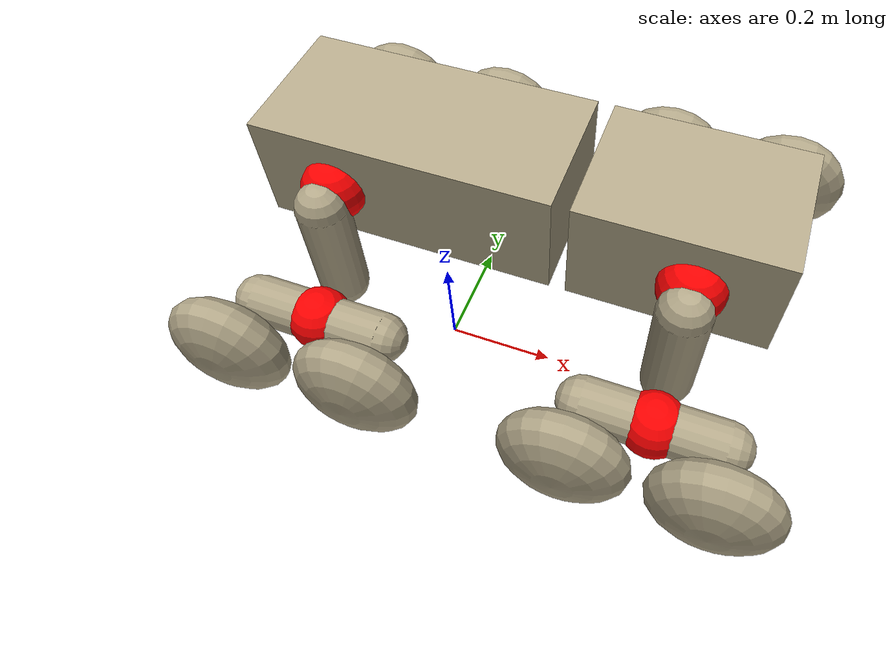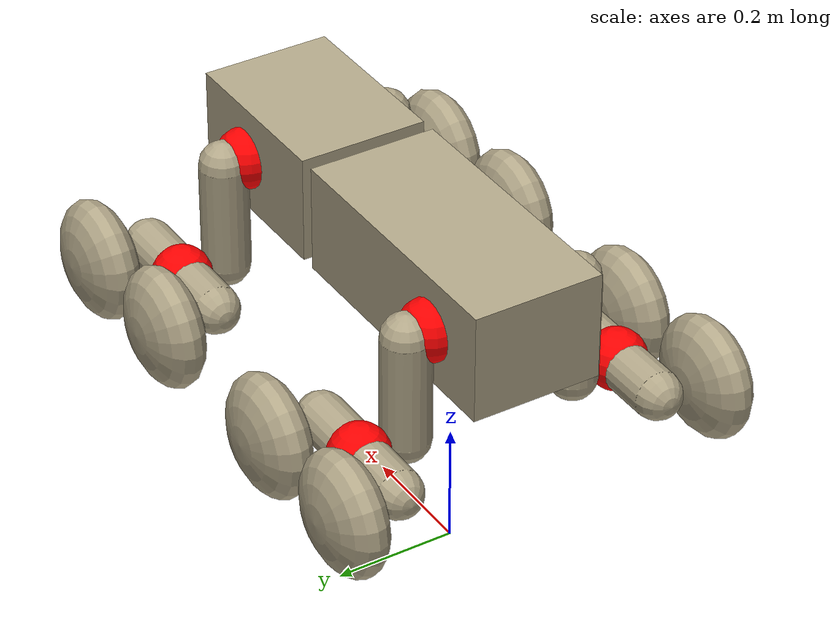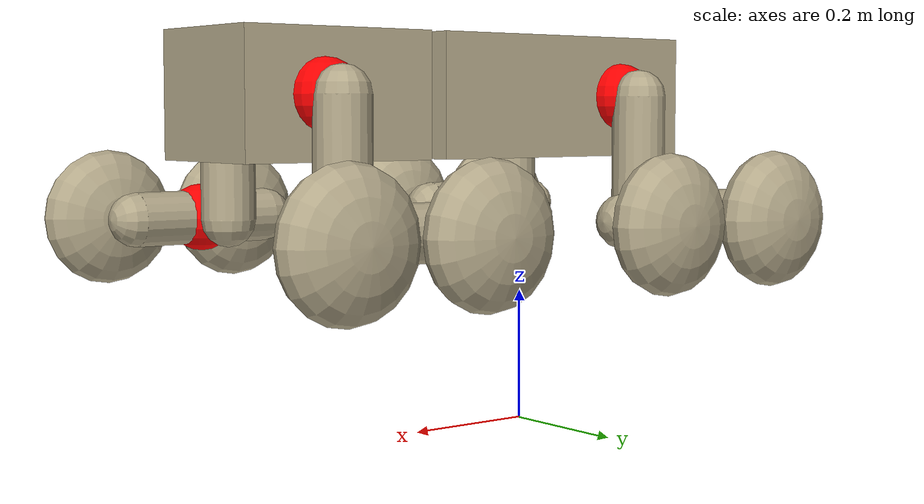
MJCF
<mujoco model="MuJoCo Model">
  <compiler angle="radian"/>

  <worldbody>
    <body name="torso" pos="0 0 0.5">
      <joint name="torso_joint" type="free"/>
      <geom size="0.23 0.108 0.09" type="box" mass="36" rgba="0.694118 0.65098 0.533333 1"/>
      <body name="torso_left_thigh" pos="-0.108 0.108 0">
        <joint name="torso_left_thigh_joint" pos="0 0 0" axis="0 1 0" armature="5.12" damping="2"/>
        <geom name="torso_left_thigh_geom" size="0.04 0.09" pos="0 0.04 -0.09" type="capsule" mass="3.375" rgba="0.694118 0.65098 0.533333 1"/>
        <site name="torso_left_thigh_site" pos="0 0 0" size="0.05" rgba="1 0 0 1"/>
        <body name="torso_left_shin" pos="0 0.12 -0.18">
          <joint name="torso_left_thigh_shin_joint" pos="0 0 0" axis="0 1 0" armature="2.88" damping="2"/>
          <geom name="torso_left_shin_geom" size="0.04 0.108" quat="0.707107 0 0.707107 0" type="capsule" mass="1.2" rgba="0.694118 0.65098 0.533333 1"/>
          <site name="torso_left_shin_site" pos="0 0 0" size="0.05" rgba="1 0 0 1"/>
          <body name="torso_left_front_wheel" pos="0.108 0.09 0">
            <joint name="torso_left_shin_front_wheel_joint" pos="0 0 0" axis="0 1 0" armature="0.18" damping="2"/>
            <geom name="torso_left_front_wheel_geom" size="0.1 0.1 0.05" quat="0.707107 0.707107 0 0" type="ellipsoid" solref="-80800 -112" mass="2.25" rgba="0.694118 0.65098 0.533333 1"/>
            <site name="torso_left_front_wheel_site" pos="0 0 0" size="0.05" rgba="1 0 0 1"/>
          </body>
          <body name="torso_left_rear_wheel" pos="-0.108 0.09 0">
            <joint name="torso_left_shin_rear_wheel_joint" pos="0 0 0" axis="0 1 0" armature="0.18" damping="2"/>
            <geom name="torso_left_rear_wheel_geom" size="0.1 0.1 0.05" quat="0.707107 0.707107 0 0" type="ellipsoid" solref="-80800 -112" mass="2.25" rgba="0.694118 0.65098 0.533333 1"/>
            <site name="torso_left_rear_wheel_site" pos="0 0 0" size="0.05" rgba="1 0 0 1"/>
          </body>
        </body>
      </body>
      <body name="torso_right_thigh" pos="-0.108 -0.108 0">
        <joint name="torso_right_thigh_joint" pos="0 0 0" axis="0 1 0" armature="5.12" damping="2"/>
        <geom name="torso_right_thigh_geom" size="0.04 0.09" pos="0 -0.04 -0.09" type="capsule" mass="3.375" rgba="0.694118 0.65098 0.533333 1"/>
        <site name="torso_right_thigh_site" pos="0 0 0" size="0.05" rgba="1 0 0 1"/>
        <body name="torso_right_shin" pos="0 -0.12 -0.18">
          <joint name="torso_right_thigh_shin_joint" pos="0 0 0" axis="0 1 0" armature="2.88" damping="2"/>
          <geom name="torso_right_shin_geom" size="0.04 0.108" quat="0.707107 0 0.707107 0" type="capsule" mass="1.2" rgba="0.694118 0.65098 0.533333 1"/>
          <site name="torso_right_shin_site" pos="0 0 0" size="0.05" rgba="1 0 0 1"/>
          <body name="torso_right_front_wheel" pos="0.108 -0.09 0">
            <joint name="torso_right_shin_front_wheel_joint" pos="0 0 0" axis="0 1 0" armature="0.18" damping="2"/>
            <geom name="torso_right_front_wheel_geom" size="0.1 0.1 0.05" quat="0.707107 0.707107 0 0" type="ellipsoid" solref="-80800 -112" mass="2.25" rgba="0.694118 0.65098 0.533333 1"/>
            <site name="torso_right_front_wheel_site" pos="0 0 0" size="0.05" rgba="1 0 0 1"/>
          </body>
          <body name="torso_right_rear_wheel" pos="-0.108 -0.09 0">
            <joint name="torso_right_shin_rear_wheel_joint" pos="0 0 0" axis="0 1 0" armature="0.18" damping="2"/>
            <geom name="torso_right_rear_wheel_geom" size="0.1 0.1 0.05" quat="0.707107 0.707107 0 0" type="ellipsoid" solref="-80800 -112" mass="2.25" rgba="0.694118 0.65098 0.533333 1"/>
            <site name="torso_right_rear_wheel_site" pos="0 0 0" size="0.05" rgba="1 0 0 1"/>
          </body>
        </body>
      </body>
      <body name="head" pos="0.4054 0 0">
        <joint name="head_joint" pos="-0.15 0 0" axis="1 0 0" stiffness="10" range="-0.436332 0.436332" damping="1"/>
        <geom size="0.15 0.108 0.09" type="box" mass="18" rgba="0.694118 0.65098 0.533333 1"/>
        <body name="head_left_thigh" pos="0.027 0.108 0">
          <joint name="head_left_thigh_joint" pos="0 0 0" axis="0 1 0" armature="5.12" damping="2"/>
          <geom name="head_left_thigh_geom" size="0.04 0.09" pos="0 0.04 -0.09" type="capsule" mass="3.375" rgba="0.694118 0.65098 0.533333 1"/>
          <site name="head_left_thigh_site" pos="0 0 0" size="0.05" rgba="1 0 0 1"/>
          <body name="head_left_shin" pos="0 0.12 -0.18">
            <joint name="head_left_thigh_shin_joint" pos="0 0 0" axis="0 1 0" armature="2.88" damping="2"/>
            <geom name="head_left_shin_geom" size="0.04 0.108" quat="0.707107 0 0.707107 0" type="capsule" mass="1.2" rgba="0.694118 0.65098 0.533333 1"/>
            <site name="head_left_shin_site" pos="0 0 0" size="0.05" rgba="1 0 0 1"/>
            <body name="head_left_front_wheel" pos="0.108 0.09 0">
              <joint name="head_left_shin_front_wheel_joint" pos="0 0 0" axis="0 1 0" armature="0.18" damping="2"/>
              <geom name="head_left_front_wheel_geom" size="0.1 0.1 0.05" quat="0.707107 0.707107 0 0" type="ellipsoid" solref="-80800 -112" mass="2.25" rgba="0.694118 0.65098 0.533333 1"/>
              <site name="head_left_front_wheel_site" pos="0 0 0" size="0.05" rgba="1 0 0 1"/>
            </body>
            <body name="head_left_rear_wheel" pos="-0.108 0.09 0">
              <joint name="head_left_shin_rear_wheel_joint" pos="0 0 0" axis="0 1 0" armature="0.18" damping="2"/>
              <geom name="head_left_rear_wheel_geom" size="0.1 0.1 0.05" quat="0.707107 0.707107 0 0" type="ellipsoid" solref="-80800 -112" mass="2.25" rgba="0.694118 0.65098 0.533333 1"/>
              <site name="head_left_rear_wheel_site" pos="0 0 0" size="0.05" rgba="1 0 0 1"/>
            </body>
          </body>
        </body>
        <body name="head_right_thigh" pos="0.027 -0.108 0">
          <joint name="head_right_thigh_joint" pos="0 0 0" axis="0 1 0" armature="5.12" damping="2"/>
          <geom name="head_right_thigh_geom" size="0.04 0.09" pos="0 -0.04 -0.09" type="capsule" mass="3.375" rgba="0.694118 0.65098 0.533333 1"/>
          <site name="head_right_thigh_site" pos="0 0 0" size="0.05" rgba="1 0 0 1"/>
          <body name="head_right_shin" pos="0 -0.12 -0.18">
            <joint name="head_right_thigh_shin_joint" pos="0 0 0" axis="0 1 0" armature="2.88" damping="2"/>
            <geom name="head_right_shin_geom" size="0.04 0.108" quat="0.707107 0 0.707107 0" type="capsule" mass="1.2" rgba="0.694118 0.65098 0.533333 1"/>
            <site name="head_right_shin_site" pos="0 0 0" size="0.05" rgba="1 0 0 1"/>
            <body name="head_right_front_wheel" pos="0.108 -0.09 0">
              <joint name="head_right_shin_front_wheel_joint" pos="0 0 0" axis="0 1 0" armature="0.18" damping="2"/>
              <geom name="head_right_front_wheel_geom" size="0.1 0.1 0.05" quat="0.707107 0.707107 0 0" type="ellipsoid" solref="-80800 -112" mass="2.25" rgba="0.694118 0.65098 0.533333 1"/>
              <site name="head_right_front_wheel_site" pos="0 0 0" size="0.05" rgba="1 0 0 1"/>
            </body>
            <body name="head_right_rear_wheel" pos="-0.108 -0.09 0">
              <joint name="head_right_shin_rear_wheel_joint" pos="0 0 0" axis="0 1 0" armature="0.18" damping="2"/>
              <geom name="head_right_rear_wheel_geom" size="0.1 0.1 0.05" quat="0.707107 0.707107 0 0" type="ellipsoid" solref="-80800 -112" mass="2.25" rgba="0.694118 0.65098 0.533333 1"/>
              <site name="head_right_rear_wheel_site" pos="0 0 0" size="0.05" rgba="1 0 0 1"/>
            </body>
          </body>
        </body>
      </body>
    </body>
  </worldbody>

  <actuator>
    <general name="bl_hip" joint="torso_left_thigh_joint"/>
    <general name="bl_knee" joint="torso_left_thigh_shin_joint"/>
    <general name="bl_wheel1_joint" joint="torso_left_shin_front_wheel_joint"/>
    <general name="bl_wheel2_joint" joint="torso_left_shin_rear_wheel_joint"/>
    <general name="br_hip" joint="torso_right_thigh_joint"/>
    <general name="br_knee" joint="torso_right_thigh_shin_joint"/>
    <general name="br_wheel1_joint" joint="torso_right_shin_front_wheel_joint"/>
    <general name="br_wheel2_joint" joint="torso_right_shin_rear_wheel_joint"/>
    <general name="fl_hip" joint="head_left_thigh_joint"/>
    <general name="fl_knee" joint="head_left_thigh_shin_joint"/>
    <general name="fl_wheel1_joint" joint="head_left_shin_front_wheel_joint"/>
    <general name="fl_wheel2_joint" joint="head_left_shin_rear_wheel_joint"/>
    <general name="fr_hip" joint="head_right_thigh_joint"/>
    <general name="fr_knee" joint="head_right_thigh_shin_joint"/>
    <general name="fr_wheel1_joint" joint="head_right_shin_front_wheel_joint"/>
    <general name="fr_wheel2_joint" joint="head_right_shin_rear_wheel_joint"/>
  </actuator>

  <sensor>
    <force site="torso_right_thigh_site" name="br_hip_force"/>
    <torque site="torso_right_thigh_site" name="br_hip_torque"/>
    <force site="torso_right_shin_site" name="br_knee_force"/>
    <torque site="torso_right_shin_site" name="br_knee_torque"/>
    <force site="head_right_thigh_site" name="fr_hip_force"/>
    <force site="head_right_shin_site" name="fr_knee_force"/>
    <torque site="head_right_shin_site" name="fr_knee_torque"/>
    <torque site="head_right_thigh_site" name="fr_hip_torque"/>
  </sensor>
</mujoco>
